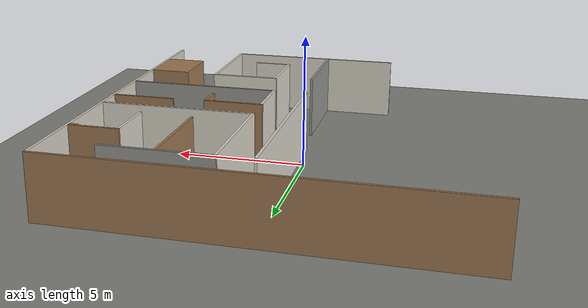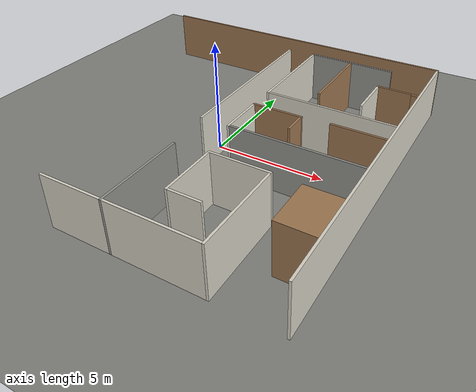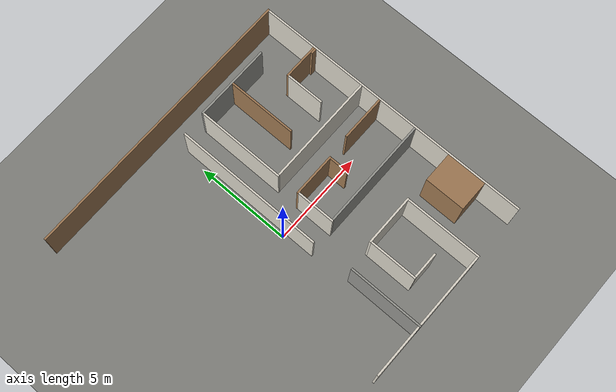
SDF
<sdf version="1.10">
 <world name="arena_world">
  <model name="ground_plane">
   <static>true</static>
   <link name="link">
    <collision name="collision">
     <geometry><plane><normal>0 0 1</normal><size>15 15</size></plane></geometry>
     <surface>
      <friction><ode><mu>0.80000000000000004</mu><mu2>0.80000000000000004</mu2></ode></friction>
      <contact><ode><kp>1000000000</kp><kd>1</kd></ode></contact>
     </surface>
    </collision>
    <visual name="visual">
     <geometry><plane><normal>0 0 1</normal><size>15 15</size></plane></geometry>
     <material>
      <ambient>0.449999988 0.449999988 0.439999998 1</ambient>
      <diffuse>0.5 0.5 0.479999989 1</diffuse>
      <specular>0.150000006 0.150000006 0.150000006 1</specular>
      <pbr><metal><roughness>0.95</roughness><metalness>0.0</metalness></metal></pbr>
     </material>
    </visual>
    <inertial>
     <mass>1</mass>
     <inertia><ixx>1</ixx><ixy>0</ixy><ixz>0</ixz><iyy>1</iyy><iyz>0</iyz><izz>1</izz></inertia>
    </inertial>
   </link>
  </model>
  <model name="wall_000">
   <static>true</static>
   <pose>0 7.4500000000000002 1.22 0 0 0</pose>
   <link name="link">
    <collision name="collision">
     <geometry><box><size>15 0.10000000000000001 2.4399999999999999</size></box></geometry>
     <surface>
      <friction><ode><mu>0.69999999999999996</mu><mu2>0.69999999999999996</mu2></ode></friction>
      <contact>
       <ode><kp>1000000000</kp><kd>1</kd><max_vel>0.10000000000000001</max_vel><min_depth>0.001</min_depth></ode>
      </contact>
      <bounce><restitution_coefficient>0</restitution_coefficient><threshold>1000000</threshold></bounce>
     </surface>
    </collision>
    <visual name="visual">
     <geometry><box><size>15 0.10000000000000001 2.4399999999999999</size></box></geometry>
     <material>
      <ambient>0.550000012 0.419999987 0.280000001 1</ambient>
      <diffuse>0.620000005 0.469999999 0.319999993 1</diffuse>
      <specular>0.0599999987 0.0599999987 0.0599999987 1</specular>
      <pbr><metal><roughness>0.7</roughness><metalness>0.0</metalness></metal></pbr>
     </material>
    </visual>
    <inertial>
     <mass>1</mass>
     <inertia><ixx>1</ixx><ixy>0</ixy><ixz>0</ixz><iyy>1</iyy><iyz>0</iyz><izz>1</izz></inertia>
    </inertial>
   </link>
  </model>
  <model name="wall_002">
   <static>true</static>
   <pose>7.4500000000000002 -0.050000000000000003 1.22 0 0 0</pose>
   <link name="link">
    <collision name="collision">
     <geometry><box><size>0.10000000000000001 14.9 2.4399999999999999</size></box></geometry>
     <surface>
      <friction><ode><mu>0.69999999999999996</mu><mu2>0.69999999999999996</mu2></ode></friction>
      <contact>
       <ode><kp>1000000000</kp><kd>1</kd><max_vel>0.10000000000000001</max_vel><min_depth>0.001</min_depth></ode>
      </contact>
      <bounce><restitution_coefficient>0</restitution_coefficient><threshold>1000000</threshold></bounce>
     </surface>
    </collision>
    <visual name="visual">
     <geometry><box><size>0.10000000000000001 14.9 2.4399999999999999</size></box></geometry>
     <material>
      <ambient>0.819999993 0.800000012 0.75 1</ambient>
      <diffuse>0.850000024 0.829999983 0.779999971 1</diffuse>
      <specular>0.0500000007 0.0500000007 0.0500000007 1</specular>
      <pbr><metal><roughness>0.85</roughness><metalness>0.0</metalness></metal></pbr>
     </material>
    </visual>
    <inertial>
     <mass>1</mass>
     <inertia><ixx>1</ixx><ixy>0</ixy><ixz>0</ixz><iyy>1</iyy><iyz>0</iyz><izz>1</izz></inertia>
    </inertial>
   </link>
  </model>
  <model name="wall_004">
   <static>true</static>
   <pose>3.5499999999999998 6.25 1.22 0 0 0</pose>
   <link name="link">
    <collision name="collision">
     <geometry><box><size>4.0999999999999996 0.10000000000000001 2.4399999999999999</size></box></geometry>
     <surface>
      <friction><ode><mu>0.69999999999999996</mu><mu2>0.69999999999999996</mu2></ode></friction>
      <contact>
       <ode><kp>1000000000</kp><kd>1</kd><max_vel>0.10000000000000001</max_vel><min_depth>0.001</min_depth></ode>
      </contact>
      <bounce><restitution_coefficient>0</restitution_coefficient><threshold>1000000</threshold></bounce>
     </surface>
    </collision>
    <visual name="visual">
     <geometry><box><size>4.0999999999999996 0.10000000000000001 2.4399999999999999</size></box></geometry>
     <material>
      <ambient>0.550000012 0.550000012 0.529999971 1</ambient>
      <diffuse>0.579999983 0.579999983 0.560000002 1</diffuse>
      <specular>0.0799999982 0.0799999982 0.0799999982 1</specular>
      <pbr><metal><roughness>0.9</roughness><metalness>0.0</metalness></metal></pbr>
     </material>
    </visual>
    <inertial>
     <mass>1</mass>
     <inertia><ixx>1</ixx><ixy>0</ixy><ixz>0</ixz><iyy>1</iyy><iyz>0</iyz><izz>1</izz></inertia>
    </inertial>
   </link>
  </model>
  <model name="wall_006">
   <static>true</static>
   <pose>0.25 2.2999999999999998 1.22 0 0 0</pose>
   <link name="link">
    <collision name="collision">
     <geometry><box><size>0.10000000000000001 7.7999999999999998 2.4399999999999999</size></box></geometry>
     <surface>
      <friction><ode><mu>0.69999999999999996</mu><mu2>0.69999999999999996</mu2></ode></friction>
      <contact>
       <ode><kp>1000000000</kp><kd>1</kd><max_vel>0.10000000000000001</max_vel><min_depth>0.001</min_depth></ode>
      </contact>
      <bounce><restitution_coefficient>0</restitution_coefficient><threshold>1000000</threshold></bounce>
     </surface>
    </collision>
    <visual name="visual">
     <geometry><box><size>0.10000000000000001 7.7999999999999998 2.4399999999999999</size></box></geometry>
     <material>
      <ambient>0.819999993 0.800000012 0.75 1</ambient>
      <diffuse>0.850000024 0.829999983 0.779999971 1</diffuse>
      <specular>0.0500000007 0.0500000007 0.0500000007 1</specular>
      <pbr><metal><roughness>0.85</roughness><metalness>0.0</metalness></metal></pbr>
     </material>
    </visual>
    <inertial>
     <mass>1</mass>
     <inertia><ixx>1</ixx><ixy>0</ixy><ixz>0</ixz><iyy>1</iyy><iyz>0</iyz><izz>1</izz></inertia>
    </inertial>
   </link>
  </model>
  <model name="wall_007">
   <static>true</static>
   <pose>1.55 3.8999999999999999 1.22 0 0 0</pose>
   <link name="link">
    <collision name="collision">
     <geometry><box><size>0.10000000000000001 4.5999999999999996 2.4399999999999999</size></box></geometry>
     <surface>
      <friction><ode><mu>0.69999999999999996</mu><mu2>0.69999999999999996</mu2></ode></friction>
      <contact>
       <ode><kp>1000000000</kp><kd>1</kd><max_vel>0.10000000000000001</max_vel><min_depth>0.001</min_depth></ode>
      </contact>
      <bounce><restitution_coefficient>0</restitution_coefficient><threshold>1000000</threshold></bounce>
     </surface>
    </collision>
    <visual name="visual">
     <geometry><box><size>0.10000000000000001 4.5999999999999996 2.4399999999999999</size></box></geometry>
     <material>
      <ambient>0.819999993 0.800000012 0.75 1</ambient>
      <diffuse>0.850000024 0.829999983 0.779999971 1</diffuse>
      <specular>0.0500000007 0.0500000007 0.0500000007 1</specular>
      <pbr><metal><roughness>0.85</roughness><metalness>0.0</metalness></metal></pbr>
     </material>
    </visual>
    <inertial>
     <mass>1</mass>
     <inertia><ixx>1</ixx><ixy>0</ixy><ixz>0</ixz><iyy>1</iyy><iyz>0</iyz><izz>1</izz></inertia>
    </inertial>
   </link>
  </model>
  <model name="wall_008">
   <static>true</static>
   <pose>3.5499999999999998 4.4000000000000004 1.22 0 0 0</pose>
   <link name="link">
    <collision name="collision">
     <geometry><box><size>0.10000000000000001 3.6000000000000001 2.4399999999999999</size></box></geometry>
     <surface>
      <friction><ode><mu>0.69999999999999996</mu><mu2>0.69999999999999996</mu2></ode></friction>
      <contact>
       <ode><kp>1000000000</kp><kd>1</kd><max_vel>0.10000000000000001</max_vel><min_depth>0.001</min_depth></ode>
      </contact>
      <bounce><restitution_coefficient>0</restitution_coefficient><threshold>1000000</threshold></bounce>
     </surface>
    </collision>
    <visual name="visual">
     <geometry><box><size>0.10000000000000001 3.6000000000000001 2.4399999999999999</size></box></geometry>
     <material>
      <ambient>0.550000012 0.419999987 0.280000001 1</ambient>
      <diffuse>0.620000005 0.469999999 0.319999993 1</diffuse>
      <specular>0.0599999987 0.0599999987 0.0599999987 1</specular>
      <pbr><metal><roughness>0.7</roughness><metalness>0.0</metalness></metal></pbr>
     </material>
    </visual>
    <inertial>
     <mass>1</mass>
     <inertia><ixx>1</ixx><ixy>0</ixy><ixz>0</ixz><iyy>1</iyy><iyz>0</iyz><izz>1</izz></inertia>
    </inertial>
   </link>
  </model>
  <model name="wall_012">
   <static>true</static>
   <pose>6.4500000000000002 4.5499999999999998 1.22 0 0 0</pose>
   <link name="link">
    <collision name="collision">
     <geometry><box><size>1.8999999999999999 0.10000000000000001 2.4399999999999999</size></box></geometry>
     <surface>
      <friction><ode><mu>0.69999999999999996</mu><mu2>0.69999999999999996</mu2></ode></friction>
      <contact>
       <ode><kp>1000000000</kp><kd>1</kd><max_vel>0.10000000000000001</max_vel><min_depth>0.001</min_depth></ode>
      </contact>
      <bounce><restitution_coefficient>0</restitution_coefficient><threshold>1000000</threshold></bounce>
     </surface>
    </collision>
    <visual name="visual">
     <geometry><box><size>1.8999999999999999 0.10000000000000001 2.4399999999999999</size></box></geometry>
     <material>
      <ambient>0.550000012 0.419999987 0.280000001 1</ambient>
      <diffuse>0.620000005 0.469999999 0.319999993 1</diffuse>
      <specular>0.0599999987 0.0599999987 0.0599999987 1</specular>
      <pbr><metal><roughness>0.7</roughness><metalness>0.0</metalness></metal></pbr>
     </material>
    </visual>
    <inertial>
     <mass>1</mass>
     <inertia><ixx>1</ixx><ixy>0</ixy><ixz>0</ixz><iyy>1</iyy><iyz>0</iyz><izz>1</izz></inertia>
    </inertial>
   </link>
  </model>
  <model name="wall_013">
   <static>true</static>
   <pose>5.5499999999999998 3.5 1.22 0 0 0</pose>
   <link name="link">
    <collision name="collision">
     <geometry><box><size>0.10000000000000001 2 2.4399999999999999</size></box></geometry>
     <surface>
      <friction><ode><mu>0.69999999999999996</mu><mu2>0.69999999999999996</mu2></ode></friction>
      <contact>
       <ode><kp>1000000000</kp><kd>1</kd><max_vel>0.10000000000000001</max_vel><min_depth>0.001</min_depth></ode>
      </contact>
      <bounce><restitution_coefficient>0</restitution_coefficient><threshold>1000000</threshold></bounce>
     </surface>
    </collision>
    <visual name="visual">
     <geometry><box><size>0.10000000000000001 2 2.4399999999999999</size></box></geometry>
     <material>
      <ambient>0.819999993 0.800000012 0.75 1</ambient>
      <diffuse>0.850000024 0.829999983 0.779999971 1</diffuse>
      <specular>0.0500000007 0.0500000007 0.0500000007 1</specular>
      <pbr><metal><roughness>0.85</roughness><metalness>0.0</metalness></metal></pbr>
     </material>
    </visual>
    <inertial>
     <mass>1</mass>
     <inertia><ixx>1</ixx><ixy>0</ixy><ixz>0</ixz><iyy>1</iyy><iyz>0</iyz><izz>1</izz></inertia>
    </inertial>
   </link>
  </model>
  <model name="wall_014">
   <static>true</static>
   <pose>7.25 4.4500000000000002 1.22 0 0 0</pose>
   <link name="link">
    <collision name="collision">
     <geometry><box><size>0.29999999999999999 0.10000000000000001 2.4399999999999999</size></box></geometry>
     <surface>
      <friction><ode><mu>0.69999999999999996</mu><mu2>0.69999999999999996</mu2></ode></friction>
      <contact>
       <ode><kp>1000000000</kp><kd>1</kd><max_vel>0.10000000000000001</max_vel><min_depth>0.001</min_depth></ode>
      </contact>
      <bounce><restitution_coefficient>0</restitution_coefficient><threshold>1000000</threshold></bounce>
     </surface>
    </collision>
    <visual name="visual">
     <geometry><box><size>0.29999999999999999 0.10000000000000001 2.4399999999999999</size></box></geometry>
     <material>
      <ambient>0.550000012 0.419999987 0.280000001 1</ambient>
      <diffuse>0.620000005 0.469999999 0.319999993 1</diffuse>
      <specular>0.0599999987 0.0599999987 0.0599999987 1</specular>
      <pbr><metal><roughness>0.7</roughness><metalness>0.0</metalness></metal></pbr>
     </material>
    </visual>
    <inertial>
     <mass>1</mass>
     <inertia><ixx>1</ixx><ixy>0</ixy><ixz>0</ixz><iyy>1</iyy><iyz>0</iyz><izz>1</izz></inertia>
    </inertial>
   </link>
  </model>
  <model name="wall_018">
   <static>true</static>
   <pose>4.5 1.6499999999999999 1.22 0 0 0</pose>
   <link name="link">
    <collision name="collision">
     <geometry><box><size>5.7999999999999998 0.10000000000000001 2.4399999999999999</size></box></geometry>
     <surface>
      <friction><ode><mu>0.69999999999999996</mu><mu2>0.69999999999999996</mu2></ode></friction>
      <contact>
       <ode><kp>1000000000</kp><kd>1</kd><max_vel>0.10000000000000001</max_vel><min_depth>0.001</min_depth></ode>
      </contact>
      <bounce><restitution_coefficient>0</restitution_coefficient><threshold>1000000</threshold></bounce>
     </surface>
    </collision>
    <visual name="visual">
     <geometry><box><size>5.7999999999999998 0.10000000000000001 2.4399999999999999</size></box></geometry>
     <material>
      <ambient>0.819999993 0.800000012 0.75 1</ambient>
      <diffuse>0.850000024 0.829999983 0.779999971 1</diffuse>
      <specular>0.0500000007 0.0500000007 0.0500000007 1</specular>
      <pbr><metal><roughness>0.85</roughness><metalness>0.0</metalness></metal></pbr>
     </material>
    </visual>
    <inertial>
     <mass>1</mass>
     <inertia><ixx>1</ixx><ixy>0</ixy><ixz>0</ixz><iyy>1</iyy><iyz>0</iyz><izz>1</izz></inertia>
    </inertial>
   </link>
  </model>
  <model name="wall_021">
   <static>true</static>
   <pose>6.2000000000000002 0.55000000000000004 1.22 0 0 0</pose>
   <link name="link">
    <collision name="collision">
     <geometry><box><size>2.3999999999999999 0.10000000000000001 2.4399999999999999</size></box></geometry>
     <surface>
      <friction><ode><mu>0.69999999999999996</mu><mu2>0.69999999999999996</mu2></ode></friction>
      <contact>
       <ode><kp>1000000000</kp><kd>1</kd><max_vel>0.10000000000000001</max_vel><min_depth>0.001</min_depth></ode>
      </contact>
      <bounce><restitution_coefficient>0</restitution_coefficient><threshold>1000000</threshold></bounce>
     </surface>
    </collision>
    <visual name="visual">
     <geometry><box><size>2.3999999999999999 0.10000000000000001 2.4399999999999999</size></box></geometry>
     <material>
      <ambient>0.550000012 0.419999987 0.280000001 1</ambient>
      <diffuse>0.620000005 0.469999999 0.319999993 1</diffuse>
      <specular>0.0599999987 0.0599999987 0.0599999987 1</specular>
      <pbr><metal><roughness>0.7</roughness><metalness>0.0</metalness></metal></pbr>
     </material>
    </visual>
    <inertial>
     <mass>1</mass>
     <inertia><ixx>1</ixx><ixy>0</ixy><ixz>0</ixz><iyy>1</iyy><iyz>0</iyz><izz>1</izz></inertia>
    </inertial>
   </link>
  </model>
  <model name="wall_022">
   <static>true</static>
   <pose>2.6499999999999999 0.45000000000000001 1.22 0 0 0</pose>
   <link name="link">
    <collision name="collision">
     <geometry><box><size>2.2999999999999998 0.10000000000000001 2.4399999999999999</size></box></geometry>
     <surface>
      <friction><ode><mu>0.69999999999999996</mu><mu2>0.69999999999999996</mu2></ode></friction>
      <contact>
       <ode><kp>1000000000</kp><kd>1</kd><max_vel>0.10000000000000001</max_vel><min_depth>0.001</min_depth></ode>
      </contact>
      <bounce><restitution_coefficient>0</restitution_coefficient><threshold>1000000</threshold></bounce>
     </surface>
    </collision>
    <visual name="visual">
     <geometry><box><size>2.2999999999999998 0.10000000000000001 2.4399999999999999</size></box></geometry>
     <material>
      <ambient>0.550000012 0.419999987 0.280000001 1</ambient>
      <diffuse>0.620000005 0.469999999 0.319999993 1</diffuse>
      <specular>0.0599999987 0.0599999987 0.0599999987 1</specular>
      <pbr><metal><roughness>0.7</roughness><metalness>0.0</metalness></metal></pbr>
     </material>
    </visual>
    <inertial>
     <mass>1</mass>
     <inertia><ixx>1</ixx><ixy>0</ixy><ixz>0</ixz><iyy>1</iyy><iyz>0</iyz><izz>1</izz></inertia>
    </inertial>
   </link>
  </model>
  <model name="wall_023">
   <static>true</static>
   <pose>1.55 -0.59999999999999998 1.22 0 0 0</pose>
   <link name="link">
    <collision name="collision">
     <geometry><box><size>0.10000000000000001 2 2.4399999999999999</size></box></geometry>
     <surface>
      <friction><ode><mu>0.69999999999999996</mu><mu2>0.69999999999999996</mu2></ode></friction>
      <contact>
       <ode><kp>1000000000</kp><kd>1</kd><max_vel>0.10000000000000001</max_vel><min_depth>0.001</min_depth></ode>
      </contact>
      <bounce><restitution_coefficient>0</restitution_coefficient><threshold>1000000</threshold></bounce>
     </surface>
    </collision>
    <visual name="visual">
     <geometry><box><size>0.10000000000000001 2 2.4399999999999999</size></box></geometry>
     <material>
      <ambient>0.819999993 0.800000012 0.75 1</ambient>
      <diffuse>0.850000024 0.829999983 0.779999971 1</diffuse>
      <specular>0.0500000007 0.0500000007 0.0500000007 1</specular>
      <pbr><metal><roughness>0.85</roughness><metalness>0.0</metalness></metal></pbr>
     </material>
    </visual>
    <inertial>
     <mass>1</mass>
     <inertia><ixx>1</ixx><ixy>0</ixy><ixz>0</ixz><iyy>1</iyy><iyz>0</iyz><izz>1</izz></inertia>
    </inertial>
   </link>
  </model>
  <model name="wall_024">
   <static>true</static>
   <pose>3.75 -0.10000000000000001 1.22 0 0 0</pose>
   <link name="link">
    <collision name="collision">
     <geometry><box><size>0.10000000000000001 1 2.4399999999999999</size></box></geometry>
     <surface>
      <friction><ode><mu>0.69999999999999996</mu><mu2>0.69999999999999996</mu2></ode></friction>
      <contact>
       <ode><kp>1000000000</kp><kd>1</kd><max_vel>0.10000000000000001</max_vel><min_depth>0.001</min_depth></ode>
      </contact>
      <bounce><restitution_coefficient>0</restitution_coefficient><threshold>1000000</threshold></bounce>
     </surface>
    </collision>
    <visual name="visual">
     <geometry><box><size>0.10000000000000001 1 2.4399999999999999</size></box></geometry>
     <material>
      <ambient>0.550000012 0.419999987 0.280000001 1</ambient>
      <diffuse>0.620000005 0.469999999 0.319999993 1</diffuse>
      <specular>0.0599999987 0.0599999987 0.0599999987 1</specular>
      <pbr><metal><roughness>0.7</roughness><metalness>0.0</metalness></metal></pbr>
     </material>
    </visual>
    <inertial>
     <mass>1</mass>
     <inertia><ixx>1</ixx><ixy>0</ixy><ixz>0</ixz><iyy>1</iyy><iyz>0</iyz><izz>1</izz></inertia>
    </inertial>
   </link>
  </model>
  <model name="wall_030">
   <static>true</static>
   <pose>4.5 -1.55 1.22 0 0 0</pose>
   <link name="link">
    <collision name="collision">
     <geometry><box><size>5.7999999999999998 0.10000000000000001 2.4399999999999999</size></box></geometry>
     <surface>
      <friction><ode><mu>0.69999999999999996</mu><mu2>0.69999999999999996</mu2></ode></friction>
      <contact>
       <ode><kp>1000000000</kp><kd>1</kd><max_vel>0.10000000000000001</max_vel><min_depth>0.001</min_depth></ode>
      </contact>
      <bounce><restitution_coefficient>0</restitution_coefficient><threshold>1000000</threshold></bounce>
     </surface>
    </collision>
    <visual name="visual">
     <geometry><box><size>5.7999999999999998 0.10000000000000001 2.4399999999999999</size></box></geometry>
     <material>
      <ambient>0.550000012 0.550000012 0.529999971 1</ambient>
      <diffuse>0.579999983 0.579999983 0.560000002 1</diffuse>
      <specular>0.0799999982 0.0799999982 0.0799999982 1</specular>
      <pbr><metal><roughness>0.9</roughness><metalness>0.0</metalness></metal></pbr>
     </material>
    </visual>
    <inertial>
     <mass>1</mass>
     <inertia><ixx>1</ixx><ixy>0</ixy><ixz>0</ixz><iyy>1</iyy><iyz>0</iyz><izz>1</izz></inertia>
    </inertial>
   </link>
  </model>
  <model name="wall_031">
   <static>true</static>
   <pose>3.25 -3.4500000000000002 1.22 0 0 0</pose>
   <link name="link">
    <collision name="collision">
     <geometry><box><size>2.7000000000000002 0.10000000000000001 2.4399999999999999</size></box></geometry>
     <surface>
      <friction><ode><mu>0.69999999999999996</mu><mu2>0.69999999999999996</mu2></ode></friction>
      <contact>
       <ode><kp>1000000000</kp><kd>1</kd><max_vel>0.10000000000000001</max_vel><min_depth>0.001</min_depth></ode>
      </contact>
      <bounce><restitution_coefficient>0</restitution_coefficient><threshold>1000000</threshold></bounce>
     </surface>
    </collision>
    <visual name="visual">
     <geometry><box><size>2.7000000000000002 0.10000000000000001 2.4399999999999999</size></box></geometry>
     <material>
      <ambient>0.819999993 0.800000012 0.75 1</ambient>
      <diffuse>0.850000024 0.829999983 0.779999971 1</diffuse>
      <specular>0.0500000007 0.0500000007 0.0500000007 1</specular>
      <pbr><metal><roughness>0.85</roughness><metalness>0.0</metalness></metal></pbr>
     </material>
    </visual>
    <inertial>
     <mass>1</mass>
     <inertia><ixx>1</ixx><ixy>0</ixy><ixz>0</ixz><iyy>1</iyy><iyz>0</iyz><izz>1</izz></inertia>
    </inertial>
   </link>
  </model>
  <model name="wall_035">
   <static>true</static>
   <pose>1.95 -4.75 1.22 0 0 0</pose>
   <link name="link">
    <collision name="collision">
     <geometry><box><size>0.10000000000000001 2.5 2.4399999999999999</size></box></geometry>
     <surface>
      <friction><ode><mu>0.69999999999999996</mu><mu2>0.69999999999999996</mu2></ode></friction>
      <contact>
       <ode><kp>1000000000</kp><kd>1</kd><max_vel>0.10000000000000001</max_vel><min_depth>0.001</min_depth></ode>
      </contact>
      <bounce><restitution_coefficient>0</restitution_coefficient><threshold>1000000</threshold></bounce>
     </surface>
    </collision>
    <visual name="visual">
     <geometry><box><size>0.10000000000000001 2.5 2.4399999999999999</size></box></geometry>
     <material>
      <ambient>0.819999993 0.800000012 0.75 1</ambient>
      <diffuse>0.850000024 0.829999983 0.779999971 1</diffuse>
      <specular>0.0500000007 0.0500000007 0.0500000007 1</specular>
      <pbr><metal><roughness>0.85</roughness><metalness>0.0</metalness></metal></pbr>
     </material>
    </visual>
    <inertial>
     <mass>1</mass>
     <inertia><ixx>1</ixx><ixy>0</ixy><ixz>0</ixz><iyy>1</iyy><iyz>0</iyz><izz>1</izz></inertia>
    </inertial>
   </link>
  </model>
  <model name="wall_036">
   <static>true</static>
   <pose>4.5499999999999998 -5.5 1.22 0 0 0</pose>
   <link name="link">
    <collision name="collision">
     <geometry><box><size>0.10000000000000001 4 2.4399999999999999</size></box></geometry>
     <surface>
      <friction><ode><mu>0.69999999999999996</mu><mu2>0.69999999999999996</mu2></ode></friction>
      <contact>
       <ode><kp>1000000000</kp><kd>1</kd><max_vel>0.10000000000000001</max_vel><min_depth>0.001</min_depth></ode>
      </contact>
      <bounce><restitution_coefficient>0</restitution_coefficient><threshold>1000000</threshold></bounce>
     </surface>
    </collision>
    <visual name="visual">
     <geometry><box><size>0.10000000000000001 4 2.4399999999999999</size></box></geometry>
     <material>
      <ambient>0.819999993 0.800000012 0.75 1</ambient>
      <diffuse>0.850000024 0.829999983 0.779999971 1</diffuse>
      <specular>0.0500000007 0.0500000007 0.0500000007 1</specular>
      <pbr><metal><roughness>0.85</roughness><metalness>0.0</metalness></metal></pbr>
     </material>
    </visual>
    <inertial>
     <mass>1</mass>
     <inertia><ixx>1</ixx><ixy>0</ixy><ixz>0</ixz><iyy>1</iyy><iyz>0</iyz><izz>1</izz></inertia>
    </inertial>
   </link>
  </model>
  <model name="wall_037">
   <static>true</static>
   <pose>6.5999999999999996 -4.5499999999999998 1.22 0 0 0</pose>
   <link name="link">
    <collision name="collision">
     <geometry><box><size>1.6000000000000001 2.1000000000000001 2.4399999999999999</size></box></geometry>
     <surface>
      <friction><ode><mu>0.69999999999999996</mu><mu2>0.69999999999999996</mu2></ode></friction>
      <contact>
       <ode><kp>1000000000</kp><kd>1</kd><max_vel>0.10000000000000001</max_vel><min_depth>0.001</min_depth></ode>
      </contact>
      <bounce><restitution_coefficient>0</restitution_coefficient><threshold>1000000</threshold></bounce>
     </surface>
    </collision>
    <visual name="visual">
     <geometry><box><size>1.6000000000000001 2.1000000000000001 2.4399999999999999</size></box></geometry>
     <material>
      <ambient>0.550000012 0.419999987 0.280000001 1</ambient>
      <diffuse>0.620000005 0.469999999 0.319999993 1</diffuse>
      <specular>0.0599999987 0.0599999987 0.0599999987 1</specular>
      <pbr><metal><roughness>0.7</roughness><metalness>0.0</metalness></metal></pbr>
     </material>
    </visual>
    <inertial>
     <mass>1</mass>
     <inertia><ixx>1</ixx><ixy>0</ixy><ixz>0</ixz><iyy>1</iyy><iyz>0</iyz><izz>1</izz></inertia>
    </inertial>
   </link>
  </model>
  <model name="wall_039">
   <static>true</static>
   <pose>0.45000000000000001 -5.5499999999999998 1.22 0 0 0</pose>
   <link name="link">
    <collision name="collision">
     <geometry><box><size>0.10000000000000001 3.8999999999999999 2.4399999999999999</size></box></geometry>
     <surface>
      <friction><ode><mu>0.69999999999999996</mu><mu2>0.69999999999999996</mu2></ode></friction>
      <contact>
       <ode><kp>1000000000</kp><kd>1</kd><max_vel>0.10000000000000001</max_vel><min_depth>0.001</min_depth></ode>
      </contact>
      <bounce><restitution_coefficient>0</restitution_coefficient><threshold>1000000</threshold></bounce>
     </surface>
    </collision>
    <visual name="visual">
     <geometry><box><size>0.10000000000000001 3.8999999999999999 2.4399999999999999</size></box></geometry>
     <material>
      <ambient>0.550000012 0.550000012 0.529999971 1</ambient>
      <diffuse>0.579999983 0.579999983 0.560000002 1</diffuse>
      <specular>0.0799999982 0.0799999982 0.0799999982 1</specular>
      <pbr><metal><roughness>0.9</roughness><metalness>0.0</metalness></metal></pbr>
     </material>
    </visual>
    <inertial>
     <mass>1</mass>
     <inertia><ixx>1</ixx><ixy>0</ixy><ixz>0</ixz><iyy>1</iyy><iyz>0</iyz><izz>1</izz></inertia>
    </inertial>
   </link>
  </model>
  <model name="wall_041">
   <static>true</static>
   <pose>2.7000000000000002 -5.9500000000000002 1.22 0 0 0</pose>
   <link name="link">
    <collision name="collision">
     <geometry><box><size>1.3999999999999999 0.10000000000000001 2.4399999999999999</size></box></geometry>
     <surface>
      <friction><ode><mu>0.69999999999999996</mu><mu2>0.69999999999999996</mu2></ode></friction>
      <contact>
       <ode><kp>1000000000</kp><kd>1</kd><max_vel>0.10000000000000001</max_vel><min_depth>0.001</min_depth></ode>
      </contact>
      <bounce><restitution_coefficient>0</restitution_coefficient><threshold>1000000</threshold></bounce>
     </surface>
    </collision>
    <visual name="visual">
     <geometry><box><size>1.3999999999999999 0.10000000000000001 2.4399999999999999</size></box></geometry>
     <material>
      <ambient>0.819999993 0.800000012 0.75 1</ambient>
      <diffuse>0.850000024 0.829999983 0.779999971 1</diffuse>
      <specular>0.0500000007 0.0500000007 0.0500000007 1</specular>
      <pbr><metal><roughness>0.85</roughness><metalness>0.0</metalness></metal></pbr>
     </material>
    </visual>
    <inertial>
     <mass>1</mass>
     <inertia><ixx>1</ixx><ixy>0</ixy><ixz>0</ixz><iyy>1</iyy><iyz>0</iyz><izz>1</izz></inertia>
    </inertial>
   </link>
  </model>
  <model name="wall_044">
   <static>true</static>
   <pose>-1 -7.4500000000000002 1.22 0 0 0</pose>
   <link name="link">
    <collision name="collision">
     <geometry><box><size>2.7999999999999998 0.10000000000000001 2.4399999999999999</size></box></geometry>
     <surface>
      <friction><ode><mu>0.69999999999999996</mu><mu2>0.69999999999999996</mu2></ode></friction>
      <contact>
       <ode><kp>1000000000</kp><kd>1</kd><max_vel>0.10000000000000001</max_vel><min_depth>0.001</min_depth></ode>
      </contact>
      <bounce><restitution_coefficient>0</restitution_coefficient><threshold>1000000</threshold></bounce>
     </surface>
    </collision>
    <visual name="visual">
     <geometry><box><size>2.7999999999999998 0.10000000000000001 2.4399999999999999</size></box></geometry>
     <material>
      <ambient>0.819999993 0.800000012 0.75 1</ambient>
      <diffuse>0.850000024 0.829999983 0.779999971 1</diffuse>
      <specular>0.0500000007 0.0500000007 0.0500000007 1</specular>
      <pbr><metal><roughness>0.85</roughness><metalness>0.0</metalness></metal></pbr>
     </material>
    </visual>
    <inertial>
     <mass>1</mass>
     <inertia><ixx>1</ixx><ixy>0</ixy><ixz>0</ixz><iyy>1</iyy><iyz>0</iyz><izz>1</izz></inertia>
    </inertial>
   </link>
  </model>
  <model name="wall_045">
   <static>true</static>
   <pose>2.5 -7.4500000000000002 1.22 0 0 0</pose>
   <link name="link">
    <collision name="collision">
     <geometry><box><size>4 0.10000000000000001 2.4399999999999999</size></box></geometry>
     <surface>
      <friction><ode><mu>0.69999999999999996</mu><mu2>0.69999999999999996</mu2></ode></friction>
      <contact>
       <ode><kp>1000000000</kp><kd>1</kd><max_vel>0.10000000000000001</max_vel><min_depth>0.001</min_depth></ode>
      </contact>
      <bounce><restitution_coefficient>0</restitution_coefficient><threshold>1000000</threshold></bounce>
     </surface>
    </collision>
    <visual name="visual">
     <geometry><box><size>4 0.10000000000000001 2.4399999999999999</size></box></geometry>
     <material>
      <ambient>0.819999993 0.800000012 0.75 1</ambient>
      <diffuse>0.850000024 0.829999983 0.779999971 1</diffuse>
      <specular>0.0500000007 0.0500000007 0.0500000007 1</specular>
      <pbr><metal><roughness>0.85</roughness><metalness>0.0</metalness></metal></pbr>
     </material>
    </visual>
    <inertial>
     <mass>1</mass>
     <inertia><ixx>1</ixx><ixy>0</ixy><ixz>0</ixz><iyy>1</iyy><iyz>0</iyz><izz>1</izz></inertia>
    </inertial>
   </link>
  </model>
 </world>
</sdf>
